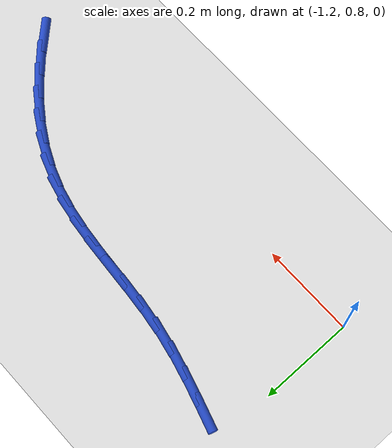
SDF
<sdf version="1.6">
 <world name="default">
  <model name="ground_plane">
   <static>1</static>
   <link name="link">
    <collision name="collision">
     <geometry><plane><normal>0 0 1</normal><size>100 100</size></plane></geometry>
     <surface><friction><ode><mu>100</mu><mu2>50</mu2></ode></friction></surface>
    </collision>
    <visual name="visual">
     <cast_shadows>0</cast_shadows>
     <geometry><plane><normal>0 0 1</normal><size>100 100</size></plane></geometry>
     <material>
      <script><uri>file://media/materials/scripts/gazebo.material</uri><name>Gazebo/WhiteGlow</name></script>
     </material>
    </visual>
   </link>
  </model>
  <model name="line">
   <link name="link_17">
    <pose>-0.33513443847080926 0.8309630099826275 0.01 0 1.57 -0.8213918172160843</pose>
    <collision name="collision">
     <geometry><cylinder><radius>0.01</radius><length>0.08</length></cylinder></geometry>
    </collision>
    <visual name="visual">
     <material>
      <script><name>Gazebo/Blue</name><uri>file://media/materials/scripts/gazebo.material</uri></script>
     </material>
     <geometry><cylinder><radius>0.01</radius><length>0.08</length></cylinder></geometry>
    </visual>
   </link>
   <link name="link_18">
    <pose>-0.3714313774555384 0.8699716427889256 0.01 0 1.57 -0.7588391995971175</pose>
    <collision name="collision">
     <geometry><cylinder><radius>0.01</radius><length>0.08</length></cylinder></geometry>
    </collision>
    <visual name="visual">
     <material>
      <script><name>Gazebo/Blue</name><uri>file://media/materials/scripts/gazebo.material</uri></script>
     </material>
     <geometry><cylinder><radius>0.01</radius><length>0.08</length></cylinder></geometry>
    </visual>
   </link>
   <link name="link_19">
    <pose>-0.4094348128900281 0.9060081905026476 0.01 0 1.57 -0.6892939933583188</pose>
    <collision name="collision">
     <geometry><cylinder><radius>0.01</radius><length>0.08</length></cylinder></geometry>
    </collision>
    <visual name="visual">
     <material>
      <script><name>Gazebo/Blue</name><uri>file://media/materials/scripts/gazebo.material</uri></script>
     </material>
     <geometry><cylinder><radius>0.01</radius><length>0.08</length></cylinder></geometry>
    </visual>
   </link>
   <link name="link_20">
    <pose>-0.4491369728901214 0.9387287205950393 0.01 0 1.57 -0.6121093011236176</pose>
    <collision name="collision">
     <geometry><cylinder><radius>0.01</radius><length>0.08</length></cylinder></geometry>
    </collision>
    <visual name="visual">
     <material>
      <script><name>Gazebo/Blue</name><uri>file://media/materials/scripts/gazebo.material</uri></script>
     </material>
     <geometry><cylinder><radius>0.01</radius><length>0.08</length></cylinder></geometry>
    </visual>
   </link>
   <link name="link_21">
    <pose>-0.4905300855716615 0.9677893005373466 0.01 0 1.57 -0.526841353721841</pose>
    <collision name="collision">
     <geometry><cylinder><radius>0.01</radius><length>0.08</length></cylinder></geometry>
    </collision>
    <visual name="visual">
     <material>
      <script><name>Gazebo/Blue</name><uri>file://media/materials/scripts/gazebo.material</uri></script>
     </material>
     <geometry><cylinder><radius>0.01</radius><length>0.08</length></cylinder></geometry>
    </visual>
   </link>
   <link name="link_22">
    <pose>-0.533606379050491 0.9928459978008146 0.01 0 1.57 -0.43340668030770224</pose>
    <collision name="collision">
     <geometry><cylinder><radius>0.01</radius><length>0.08</length></cylinder></geometry>
    </collision>
    <visual name="visual">
     <material>
      <script><name>Gazebo/Blue</name><uri>file://media/materials/scripts/gazebo.material</uri></script>
     </material>
     <geometry><cylinder><radius>0.01</radius><length>0.08</length></cylinder></geometry>
    </visual>
   </link>
   <link name="link_23">
    <pose>-0.5783580814424532 1.013554879856689 0.01 0 1.57 -0.332260951024081</pose>
    <collision name="collision">
     <geometry><cylinder><radius>0.01</radius><length>0.08</length></cylinder></geometry>
    </collision>
    <visual name="visual">
     <material>
      <script><name>Gazebo/Blue</name><uri>file://media/materials/scripts/gazebo.material</uri></script>
     </material>
     <geometry><cylinder><radius>0.01</radius><length>0.08</length></cylinder></geometry>
    </visual>
   </link>
   <link name="link_24">
    <pose>-0.6247774208633909 1.0295720141762144 0.01 0 1.57 -0.22993582774793728</pose>
    <collision name="collision">
     <geometry><cylinder><radius>0.01</radius><length>0.08</length></cylinder></geometry>
    </collision>
    <visual name="visual">
     <material>
      <script><name>Gazebo/Blue</name><uri>file://media/materials/scripts/gazebo.material</uri></script>
     </material>
     <geometry><cylinder><radius>0.01</radius><length>0.08</length></cylinder></geometry>
    </visual>
   </link>
   <link name="link_25">
    <pose>-0.6728209117523835 1.040817826639021 0.01 0 1.57 -0.14973775238715487</pose>
    <collision name="collision">
     <geometry><cylinder><radius>0.01</radius><length>0.08</length></cylinder></geometry>
    </collision>
    <visual name="visual">
     <material>
      <script><name>Gazebo/Blue</name><uri>file://media/materials/scripts/gazebo.material</uri></script>
     </material>
     <geometry><cylinder><radius>0.01</radius><length>0.08</length></cylinder></geometry>
    </visual>
   </link>
   <link name="link_26">
    <pose>-0.7223005264348741 1.0482826672145227 0.01 0 1.57 -0.09724110592672376</pose>
    <collision name="collision">
     <geometry><cylinder><radius>0.01</radius><length>0.08</length></cylinder></geometry>
    </collision>
    <visual name="visual">
     <material>
      <script><name>Gazebo/Blue</name><uri>file://media/materials/scripts/gazebo.material</uri></script>
     </material>
     <geometry><cylinder><radius>0.01</radius><length>0.08</length></cylinder></geometry>
    </visual>
   </link>
   <link name="link_27">
    <pose>-0.7729916748852738 1.0532275263046458 0.01 0 1.57 -0.0712030340251287</pose>
    <collision name="collision">
     <geometry><cylinder><radius>0.01</radius><length>0.08</length></cylinder></geometry>
    </collision>
    <visual name="visual">
     <material>
      <script><name>Gazebo/Blue</name><uri>file://media/materials/scripts/gazebo.material</uri></script>
     </material>
     <geometry><cylinder><radius>0.01</radius><length>0.08</length></cylinder></geometry>
    </visual>
   </link>
   <link name="link_28">
    <pose>-0.8246697670758255 1.0569133943273572 0.01 0 1.57 -0.07020927702640174</pose>
    <collision name="collision">
     <geometry><cylinder><radius>0.01</radius><length>0.08</length></cylinder></geometry>
    </collision>
    <visual name="visual">
     <material>
      <script><name>Gazebo/Blue</name><uri>file://media/materials/scripts/gazebo.material</uri></script>
     </material>
     <geometry><cylinder><radius>0.01</radius><length>0.08</length></cylinder></geometry>
    </visual>
   </link>
   <link name="link_29">
    <pose>-0.877110212978773 1.0606012617006242 0.01 0 1.57 -0.09318019977965995</pose>
    <collision name="collision">
     <geometry><cylinder><radius>0.01</radius><length>0.08</length></cylinder></geometry>
    </collision>
    <visual name="visual">
     <material>
      <script><name>Gazebo/Blue</name><uri>file://media/materials/scripts/gazebo.material</uri></script>
     </material>
     <geometry><cylinder><radius>0.01</radius><length>0.08</length></cylinder></geometry>
    </visual>
   </link>
   <link name="link_30">
    <pose>-0.9300884225663593 1.0655521188424144 0.01 0 1.57 -0.13935439247038758</pose>
    <collision name="collision">
     <geometry><cylinder><radius>0.01</radius><length>0.08</length></cylinder></geometry>
    </collision>
    <visual name="visual">
     <material>
      <script><name>Gazebo/Blue</name><uri>file://media/materials/scripts/gazebo.material</uri></script>
     </material>
     <geometry><cylinder><radius>0.01</radius><length>0.08</length></cylinder></geometry>
    </visual>
   </link>
   <link name="link_31">
    <pose>-0.9833798058108274 1.0730269561706942 0.01 0 1.57 -0.20276946579564908</pose>
    <collision name="collision">
     <geometry><cylinder><radius>0.01</radius><length>0.08</length></cylinder></geometry>
    </collision>
    <visual name="visual">
     <material>
      <script><name>Gazebo/Blue</name><uri>file://media/materials/scripts/gazebo.material</uri></script>
     </material>
     <geometry><cylinder><radius>0.01</radius><length>0.08</length></cylinder></geometry>
    </visual>
   </link>
   <link name="link_32">
    <pose>-1.0367667210239564 1.0840030352330565 0.01 0 1.57 -0.25405035956417626</pose>
    <collision name="collision">
     <geometry><cylinder><radius>0.01</radius><length>0.08</length></cylinder></geometry>
    </collision>
    <visual name="visual">
     <material>
      <script><name>Gazebo/Blue</name><uri>file://media/materials/scripts/gazebo.material</uri></script>
     </material>
     <geometry><cylinder><radius>0.01</radius><length>0.08</length></cylinder></geometry>
    </visual>
   </link>
   <link name="link_33">
    <pose>-1.0900710410163217 1.097844080407512 0.01 0 1.57 -0.2842284866814885</pose>
    <collision name="collision">
     <geometry><cylinder><radius>0.01</radius><length>0.08</length></cylinder></geometry>
    </collision>
    <visual name="visual">
     <material>
      <script><name>Gazebo/Blue</name><uri>file://media/materials/scripts/gazebo.material</uri></script>
     </material>
     <geometry><cylinder><radius>0.01</radius><length>0.08</length></cylinder></geometry>
    </visual>
   </link>
   <link name="link_34">
    <pose>-1.1431285879127984 1.1133442090214982 0.01 0 1.57 -0.2942199927335228</pose>
    <collision name="collision">
     <geometry><cylinder><radius>0.01</radius><length>0.08</length></cylinder></geometry>
    </collision>
    <visual name="visual">
     <material>
      <script><name>Gazebo/Blue</name><uri>file://media/materials/scripts/gazebo.material</uri></script>
     </material>
     <geometry><cylinder><radius>0.01</radius><length>0.08</length></cylinder></geometry>
    </visual>
   </link>
  </model>
 </world>
</sdf>
